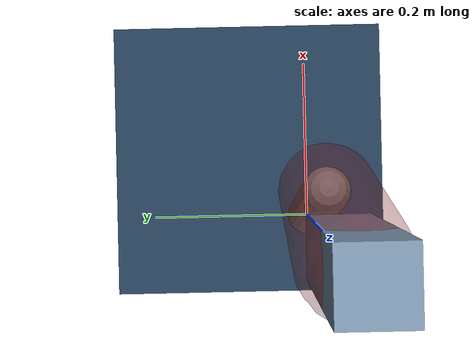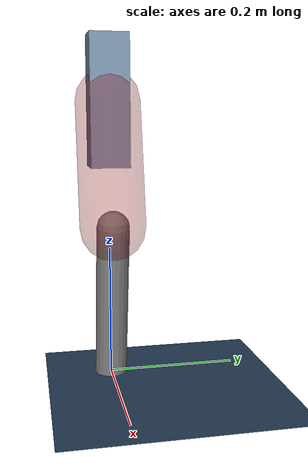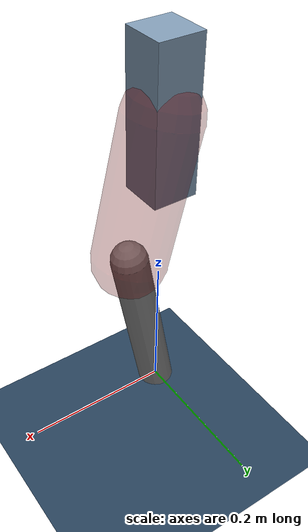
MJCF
<mujoco model="Hopper2D">
	<compiler inertiafromgeom="true" angle="radian" />
	<option timestep="0.001" integrator="implicit" cone="elliptic" solver="Newton" tolerance="1e-10" />

	<default>
		<geom contype="1" conaffinity="1" condim="3" friction="2 0.005 0.0001" solref="0.005 1" />
		<joint limited="true" damping="0.1" />
	</default>

	<asset>
		<texture name="skybox" type="skybox" builtin="gradient" rgb1=".4 .6 .8" rgb2="0 0 0" width="800" height="800" />
		<texture name="grid" type="2d" builtin="checker" rgb1=".1 .2 .3" rgb2=".2 .3 .4" width="300" height="300" mark="edge" markrgb=".2 .3 .4" />
		<material name="ground" texture="grid" texrepeat="1 1" texuniform="true" reflectance="0.1" />
		<material name="leg" rgba="0.5 0.6 0.7 1" />
	</asset>

	<worldbody>

		<geom name="floor" type="plane" size="5 5 0.25" material="ground" />

		<light directional="false" diffuse="0.8 0.8 0.8" specular="0.3 0.3 0.3" pos="0 0 2" dir="0 0 -1" />
		<light mode="targetbodycom" target="base" directional="false" diffuse="0.8 0.8 0.8" specular="0.3 0.3 0.3" pos="0 0 2" dir="0 0 -1" />

		<camera name="fixed" pos="0 -2 1" xyaxes="1 0 0 0 0 1" />
		<camera name="tracking" mode="trackcom" pos="0 -3 1" />

		<body name="root" pos="0 0 0.42866118742783144">
			<joint name="slide_x" type="slide" axis="1 0 0" range="-100 100" />
			<joint name="slide_z" type="slide" axis="0 0 1" range="0 10" />

			<body name="base" pos="0 0 0">
				<geom name="torso" type="box" size="0.03 0.03 0.1" mass="1.496" material="leg" />

				<body name="link1" pos="0 0 0" euler="0 1.3294176100160788 0">
					<joint type="hinge" axis="0 -1 0" pos="0 0 0" name="hinge1" limited="true" range="-3.14 3.14" stiffness="0" damping="0.1" />
					<geom name="thigh" type="capsule" fromto="0 0 0 0.19336415016149355 0 0" size="0.05" rgba="0.5 0 0 0.3" mass="0.7132103754037339" />

					<body name="link2" pos="0.19336415016149355 0 0" euler="0 0.4309451149122059 0">
						<joint type="hinge" axis="0 -1 0" pos="0 0 0" name="hinge2" limited="true" range="-3.14 3.14" stiffness="0" damping="0.1" />
						<geom name="shank" type="capsule" fromto="0 0 0 0.2452970372663379 0 0" size="0.025" mass="0.4386376298130703" />

					</body>
				</body>
			</body>
		</body>
	</worldbody>

	<actuator>
		<motor name="torque1" joint="hinge1" ctrlrange="-29.537510368731674 29.537510368731674" ctrllimited="true" gear="1" />
		<motor name="torque2" joint="hinge2" ctrlrange="-31.89100526150063 31.89100526150063" ctrllimited="true" gear="1" />
	</actuator>
</mujoco>
